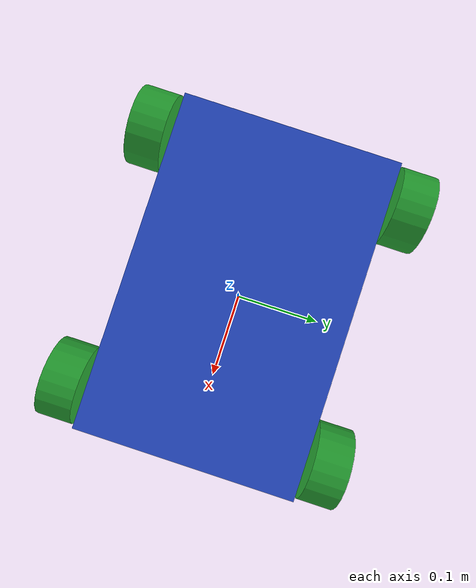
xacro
<?xml version="1.0"?>

<robot xmlns:xacro="http://www.ros.org/wiki/xacro">
    <xacro:property name="base_length" value="0.4" />
    <xacro:property name="base_width" value="0.26" />
    <xacro:property name="base_height" value="0.01" />
    <xacro:property name="wheel_radius" value="0.045" />
    <xacro:property name="wheel_length" value="0.04" />
    <xacro:property name="wheel_link_pose" value="${(base_width / 2) + (wheel_length / 2)}" />

    <link name="base_footprint" />

    <link name="base_link">
        <visual>
            <geometry>
                <box size="${base_length} ${base_width} ${base_height}" />
            </geometry>
            <origin xyz="0 0 ${base_height / 2}" rpy="0 0 0" />
            <material name="blue" />
        </visual>
        <collision>
            <geometry>
                <box size="${base_length} ${base_width} ${base_height}" />
            </geometry>
            <origin xyz="0 0 ${base_height / 2}" rpy="0 0 0" />
        </collision>
        <xacro:box_inertia m="3.0" l="${base_length}" w="${base_width}" h="${base_height}"
            xyz="0 0 ${base_height / 2}" rpy="0 0 0" />
    </link>

    <xacro:macro name="wheel_link" params="prefix">
        <link name="${prefix}_wheel_link">
            <visual>
                <geometry>
                    <cylinder radius="${wheel_radius}" length="${wheel_length}" />
                </geometry>
                <origin xyz="0 0 0" rpy="${pi / 2} 0 0" />
                <material name="green" />
            </visual>
            <collision>
                <geometry>
                    <cylinder radius="${wheel_radius}" length="${wheel_length}" />
                </geometry>
                <origin xyz="0 0 0" rpy="${pi / 2} 0 0" />
            </collision>
            <xacro:cylinder_inertia m="0.1" r="${wheel_radius}" l="${wheel_length}" xyz="0 0 0"
                rpy="${pi / 2} 0 0" />
        </link>
    </xacro:macro>

    <xacro:wheel_link prefix="front_left" />
    <xacro:wheel_link prefix="front_right" />
    <xacro:wheel_link prefix="rear_left" />
    <xacro:wheel_link prefix="rear_right" />

    <joint name="base_joint" type="fixed">
        <parent link="base_footprint" />
        <child link="base_link" />
        <origin xyz="0 0 ${wheel_radius}" rpy="0 0 0" />
    </joint>

    <joint name="base_front_left_wheel_joint" type="continuous">
        <parent link="base_link" />
        <child link="front_left_wheel_link" />
        <origin xyz="-${wheel_link_pose} -${wheel_link_pose} ${base_height / 2}" rpy="0 0 0" />
        <axis xyz="0 1 0" />
    </joint>

    <joint name="base_front_right_wheel_joint" type="continuous">
        <parent link="base_link" />
        <child link="front_right_wheel_link" />
        <origin xyz="-${wheel_link_pose} ${wheel_link_pose} ${base_height / 2}" rpy="0 0 0" />
        <axis xyz="0 1 0" />
    </joint>

    <joint name="base_rear_left_wheel_joint" type="continuous">
        <parent link="base_link" />
        <child link="rear_left_wheel_link" />
        <origin xyz="${wheel_link_pose} -${wheel_link_pose} ${base_height / 2}" rpy="0 0 0" />
        <axis xyz="0 1 0" />
    </joint>

    <joint name="base_rear_right_wheel_joint" type="continuous">
        <parent link="base_link" />
        <child link="rear_right_wheel_link" />
        <origin xyz="${wheel_link_pose} ${wheel_link_pose} ${base_height / 2}" rpy="0 0 0" />
        <axis xyz="0 1 0" />
    </joint>
</robot>
